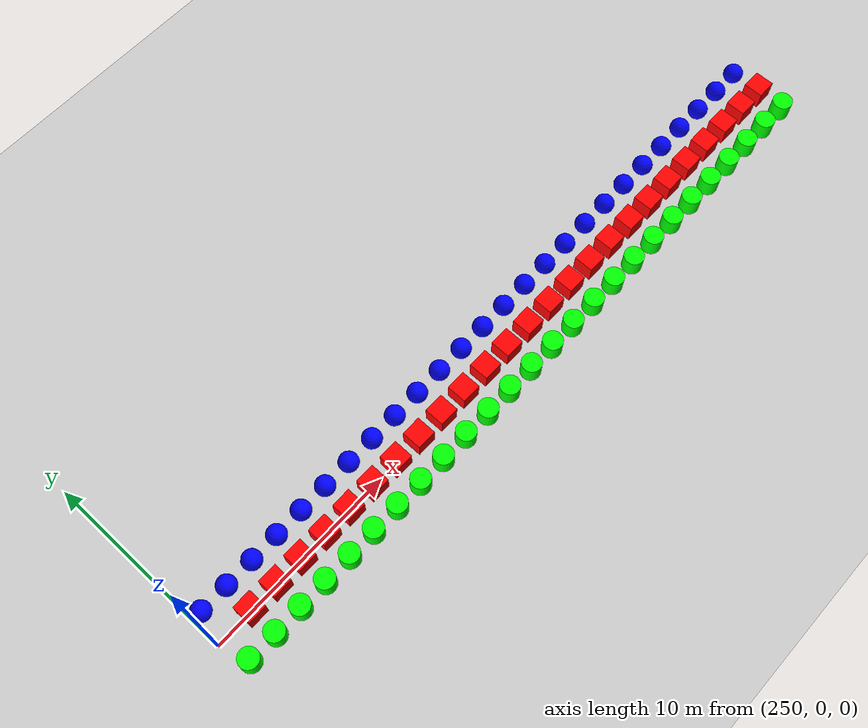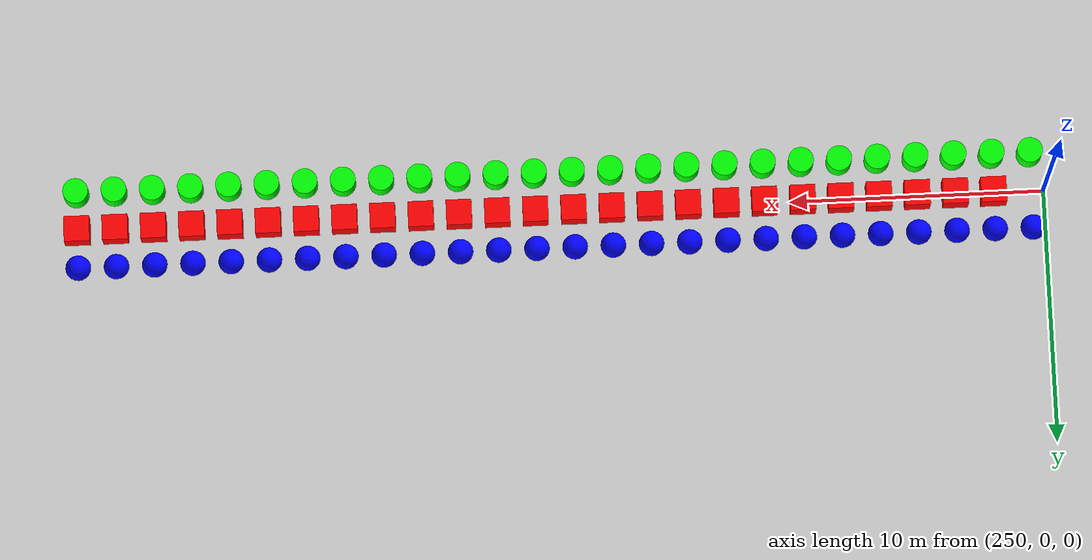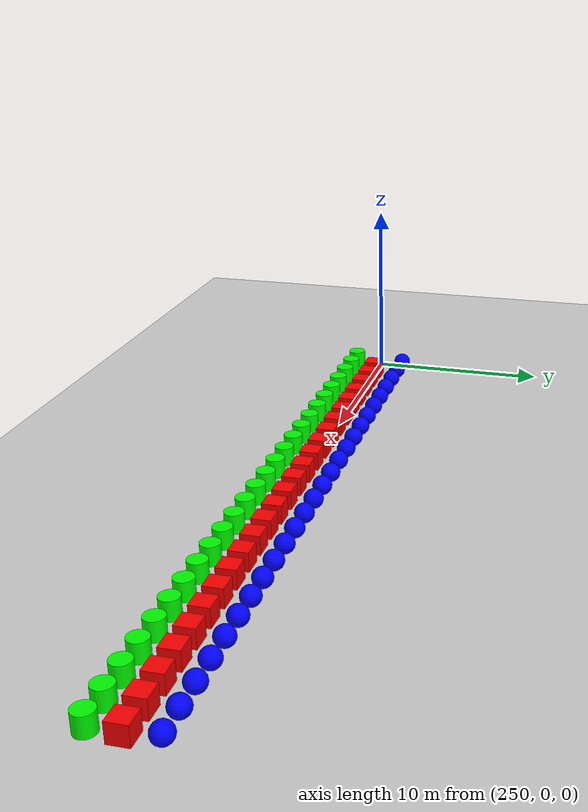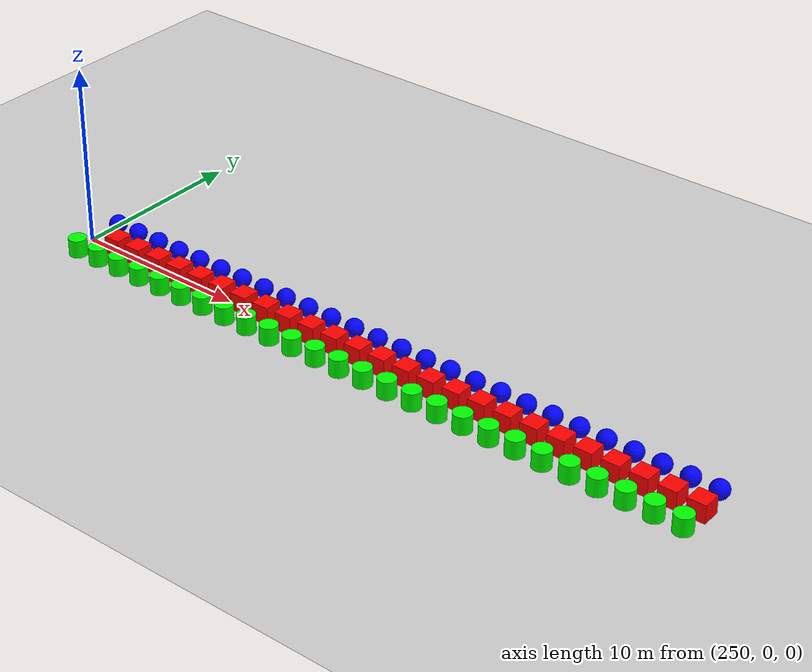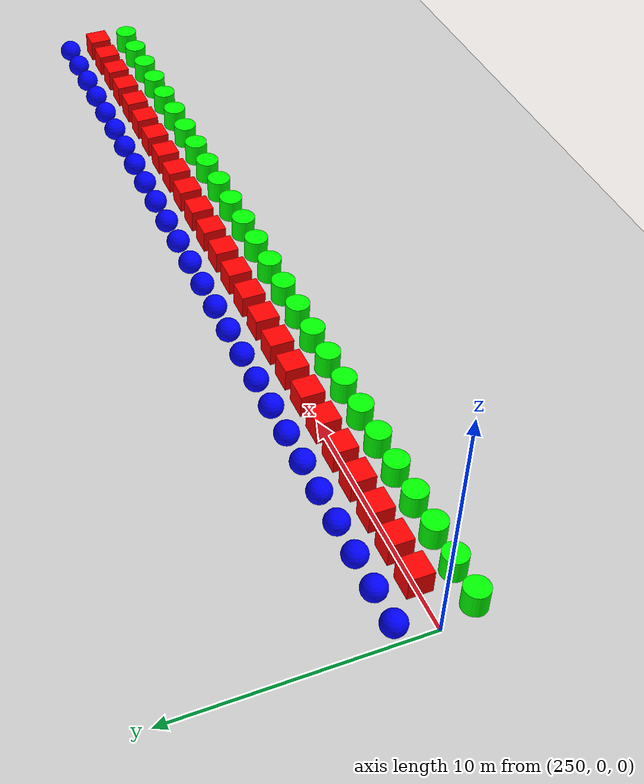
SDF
<sdf version="1.6">
 <world name="shapes">
  <model name="ground_plane">
   <static>true</static>
   <link name="link">
    <collision name="collision">
     <geometry><plane><normal>0 0 1</normal><size>100 100</size></plane></geometry>
    </collision>
    <visual name="visual">
     <geometry><plane><normal>0 0 1</normal><size>100 100</size></plane></geometry>
     <material>
      <ambient>0.8 0.8 0.8 1</ambient>
      <diffuse>0.8 0.8 0.8 1</diffuse>
      <specular>0.8 0.8 0.8 1</specular>
     </material>
    </visual>
   </link>
  </model>
  <model name="cylinder_667">
   <static>false</static>
   <pose>250.5 -1.5 0.5 0 0 0</pose>
   <link name="cylinder_link">
    <inertial>
     <inertia><ixx>2</ixx><ixy>0</ixy><ixz>0</ixz><iyy>2</iyy><iyz>0</iyz><izz>2</izz></inertia>
     <mass>2.0</mass>
    </inertial>
    <collision name="cylinder_collision">
     <geometry><cylinder><radius>0.5</radius><length>1.0</length></cylinder></geometry>
    </collision>
    <visual name="cylinder_visual">
     <geometry><cylinder><radius>0.5</radius><length>1.0</length></cylinder></geometry>
     <material><ambient>0 1 0 1</ambient><diffuse>0 1 0 1</diffuse><specular>0 1 0 1</specular></material>
    </visual>
   </link>
  </model>
  <model name="sphere_667">
   <static>false</static>
   <pose>250.5 1.5 0.5 0 0 0</pose>
   <link name="sphere_link">
    <inertial>
     <inertia><ixx>3</ixx><ixy>0</ixy><ixz>0</ixz><iyy>3</iyy><iyz>0</iyz><izz>3</izz></inertia>
     <mass>3.0</mass>
    </inertial>
    <collision name="sphere_collision"><geometry><sphere><radius>0.5</radius></sphere></geometry></collision>
    <visual name="sphere_visual">
     <geometry><sphere><radius>0.5</radius></sphere></geometry>
     <material><ambient>0 0 1 1</ambient><diffuse>0 0 1 1</diffuse><specular>0 0 1 1</specular></material>
    </visual>
   </link>
  </model>
  <model name="box_668">
   <static>false</static>
   <pose>252.0 0 0.5 0 0 0</pose>
   <link name="box_link">
    <inertial>
     <inertia><ixx>1</ixx><ixy>0</ixy><ixz>0</ixz><iyy>1</iyy><iyz>0</iyz><izz>1</izz></inertia>
     <mass>1.0</mass>
    </inertial>
    <collision name="box_collision"><geometry><box><size>1 1 1</size></box></geometry></collision>
    <visual name="box_visual">
     <geometry><box><size>1 1 1</size></box></geometry>
     <material><ambient>1 0 0 1</ambient><diffuse>1 0 0 1</diffuse><specular>1 0 0 1</specular></material>
    </visual>
   </link>
  </model>
  <model name="cylinder_668">
   <static>false</static>
   <pose>252.0 -1.5 0.5 0 0 0</pose>
   <link name="cylinder_link">
    <inertial>
     <inertia><ixx>2</ixx><ixy>0</ixy><ixz>0</ixz><iyy>2</iyy><iyz>0</iyz><izz>2</izz></inertia>
     <mass>2.0</mass>
    </inertial>
    <collision name="cylinder_collision">
     <geometry><cylinder><radius>0.5</radius><length>1.0</length></cylinder></geometry>
    </collision>
    <visual name="cylinder_visual">
     <geometry><cylinder><radius>0.5</radius><length>1.0</length></cylinder></geometry>
     <material><ambient>0 1 0 1</ambient><diffuse>0 1 0 1</diffuse><specular>0 1 0 1</specular></material>
    </visual>
   </link>
  </model>
  <model name="sphere_668">
   <static>false</static>
   <pose>252.0 1.5 0.5 0 0 0</pose>
   <link name="sphere_link">
    <inertial>
     <inertia><ixx>3</ixx><ixy>0</ixy><ixz>0</ixz><iyy>3</iyy><iyz>0</iyz><izz>3</izz></inertia>
     <mass>3.0</mass>
    </inertial>
    <collision name="sphere_collision"><geometry><sphere><radius>0.5</radius></sphere></geometry></collision>
    <visual name="sphere_visual">
     <geometry><sphere><radius>0.5</radius></sphere></geometry>
     <material><ambient>0 0 1 1</ambient><diffuse>0 0 1 1</diffuse><specular>0 0 1 1</specular></material>
    </visual>
   </link>
  </model>
  <model name="box_669">
   <static>false</static>
   <pose>253.5 0 0.5 0 0 0</pose>
   <link name="box_link">
    <inertial>
     <inertia><ixx>1</ixx><ixy>0</ixy><ixz>0</ixz><iyy>1</iyy><iyz>0</iyz><izz>1</izz></inertia>
     <mass>1.0</mass>
    </inertial>
    <collision name="box_collision"><geometry><box><size>1 1 1</size></box></geometry></collision>
    <visual name="box_visual">
     <geometry><box><size>1 1 1</size></box></geometry>
     <material><ambient>1 0 0 1</ambient><diffuse>1 0 0 1</diffuse><specular>1 0 0 1</specular></material>
    </visual>
   </link>
  </model>
  <model name="cylinder_669">
   <static>false</static>
   <pose>253.5 -1.5 0.5 0 0 0</pose>
   <link name="cylinder_link">
    <inertial>
     <inertia><ixx>2</ixx><ixy>0</ixy><ixz>0</ixz><iyy>2</iyy><iyz>0</iyz><izz>2</izz></inertia>
     <mass>2.0</mass>
    </inertial>
    <collision name="cylinder_collision">
     <geometry><cylinder><radius>0.5</radius><length>1.0</length></cylinder></geometry>
    </collision>
    <visual name="cylinder_visual">
     <geometry><cylinder><radius>0.5</radius><length>1.0</length></cylinder></geometry>
     <material><ambient>0 1 0 1</ambient><diffuse>0 1 0 1</diffuse><specular>0 1 0 1</specular></material>
    </visual>
   </link>
  </model>
  <model name="sphere_669">
   <static>false</static>
   <pose>253.5 1.5 0.5 0 0 0</pose>
   <link name="sphere_link">
    <inertial>
     <inertia><ixx>3</ixx><ixy>0</ixy><ixz>0</ixz><iyy>3</iyy><iyz>0</iyz><izz>3</izz></inertia>
     <mass>3.0</mass>
    </inertial>
    <collision name="sphere_collision"><geometry><sphere><radius>0.5</radius></sphere></geometry></collision>
    <visual name="sphere_visual">
     <geometry><sphere><radius>0.5</radius></sphere></geometry>
     <material><ambient>0 0 1 1</ambient><diffuse>0 0 1 1</diffuse><specular>0 0 1 1</specular></material>
    </visual>
   </link>
  </model>
  <model name="box_670">
   <static>false</static>
   <pose>255.0 0 0.5 0 0 0</pose>
   <link name="box_link">
    <inertial>
     <inertia><ixx>1</ixx><ixy>0</ixy><ixz>0</ixz><iyy>1</iyy><iyz>0</iyz><izz>1</izz></inertia>
     <mass>1.0</mass>
    </inertial>
    <collision name="box_collision"><geometry><box><size>1 1 1</size></box></geometry></collision>
    <visual name="box_visual">
     <geometry><box><size>1 1 1</size></box></geometry>
     <material><ambient>1 0 0 1</ambient><diffuse>1 0 0 1</diffuse><specular>1 0 0 1</specular></material>
    </visual>
   </link>
  </model>
  <model name="cylinder_670">
   <static>false</static>
   <pose>255.0 -1.5 0.5 0 0 0</pose>
   <link name="cylinder_link">
    <inertial>
     <inertia><ixx>2</ixx><ixy>0</ixy><ixz>0</ixz><iyy>2</iyy><iyz>0</iyz><izz>2</izz></inertia>
     <mass>2.0</mass>
    </inertial>
    <collision name="cylinder_collision">
     <geometry><cylinder><radius>0.5</radius><length>1.0</length></cylinder></geometry>
    </collision>
    <visual name="cylinder_visual">
     <geometry><cylinder><radius>0.5</radius><length>1.0</length></cylinder></geometry>
     <material><ambient>0 1 0 1</ambient><diffuse>0 1 0 1</diffuse><specular>0 1 0 1</specular></material>
    </visual>
   </link>
  </model>
  <model name="sphere_670">
   <static>false</static>
   <pose>255.0 1.5 0.5 0 0 0</pose>
   <link name="sphere_link">
    <inertial>
     <inertia><ixx>3</ixx><ixy>0</ixy><ixz>0</ixz><iyy>3</iyy><iyz>0</iyz><izz>3</izz></inertia>
     <mass>3.0</mass>
    </inertial>
    <collision name="sphere_collision"><geometry><sphere><radius>0.5</radius></sphere></geometry></collision>
    <visual name="sphere_visual">
     <geometry><sphere><radius>0.5</radius></sphere></geometry>
     <material><ambient>0 0 1 1</ambient><diffuse>0 0 1 1</diffuse><specular>0 0 1 1</specular></material>
    </visual>
   </link>
  </model>
  <model name="box_671">
   <static>false</static>
   <pose>256.5 0 0.5 0 0 0</pose>
   <link name="box_link">
    <inertial>
     <inertia><ixx>1</ixx><ixy>0</ixy><ixz>0</ixz><iyy>1</iyy><iyz>0</iyz><izz>1</izz></inertia>
     <mass>1.0</mass>
    </inertial>
    <collision name="box_collision"><geometry><box><size>1 1 1</size></box></geometry></collision>
    <visual name="box_visual">
     <geometry><box><size>1 1 1</size></box></geometry>
     <material><ambient>1 0 0 1</ambient><diffuse>1 0 0 1</diffuse><specular>1 0 0 1</specular></material>
    </visual>
   </link>
  </model>
  <model name="cylinder_671">
   <static>false</static>
   <pose>256.5 -1.5 0.5 0 0 0</pose>
   <link name="cylinder_link">
    <inertial>
     <inertia><ixx>2</ixx><ixy>0</ixy><ixz>0</ixz><iyy>2</iyy><iyz>0</iyz><izz>2</izz></inertia>
     <mass>2.0</mass>
    </inertial>
    <collision name="cylinder_collision">
     <geometry><cylinder><radius>0.5</radius><length>1.0</length></cylinder></geometry>
    </collision>
    <visual name="cylinder_visual">
     <geometry><cylinder><radius>0.5</radius><length>1.0</length></cylinder></geometry>
     <material><ambient>0 1 0 1</ambient><diffuse>0 1 0 1</diffuse><specular>0 1 0 1</specular></material>
    </visual>
   </link>
  </model>
  <model name="sphere_671">
   <static>false</static>
   <pose>256.5 1.5 0.5 0 0 0</pose>
   <link name="sphere_link">
    <inertial>
     <inertia><ixx>3</ixx><ixy>0</ixy><ixz>0</ixz><iyy>3</iyy><iyz>0</iyz><izz>3</izz></inertia>
     <mass>3.0</mass>
    </inertial>
    <collision name="sphere_collision"><geometry><sphere><radius>0.5</radius></sphere></geometry></collision>
    <visual name="sphere_visual">
     <geometry><sphere><radius>0.5</radius></sphere></geometry>
     <material><ambient>0 0 1 1</ambient><diffuse>0 0 1 1</diffuse><specular>0 0 1 1</specular></material>
    </visual>
   </link>
  </model>
  <model name="box_672">
   <static>false</static>
   <pose>258.0 0 0.5 0 0 0</pose>
   <link name="box_link">
    <inertial>
     <inertia><ixx>1</ixx><ixy>0</ixy><ixz>0</ixz><iyy>1</iyy><iyz>0</iyz><izz>1</izz></inertia>
     <mass>1.0</mass>
    </inertial>
    <collision name="box_collision"><geometry><box><size>1 1 1</size></box></geometry></collision>
    <visual name="box_visual">
     <geometry><box><size>1 1 1</size></box></geometry>
     <material><ambient>1 0 0 1</ambient><diffuse>1 0 0 1</diffuse><specular>1 0 0 1</specular></material>
    </visual>
   </link>
  </model>
  <model name="cylinder_672">
   <static>false</static>
   <pose>258.0 -1.5 0.5 0 0 0</pose>
   <link name="cylinder_link">
    <inertial>
     <inertia><ixx>2</ixx><ixy>0</ixy><ixz>0</ixz><iyy>2</iyy><iyz>0</iyz><izz>2</izz></inertia>
     <mass>2.0</mass>
    </inertial>
    <collision name="cylinder_collision">
     <geometry><cylinder><radius>0.5</radius><length>1.0</length></cylinder></geometry>
    </collision>
    <visual name="cylinder_visual">
     <geometry><cylinder><radius>0.5</radius><length>1.0</length></cylinder></geometry>
     <material><ambient>0 1 0 1</ambient><diffuse>0 1 0 1</diffuse><specular>0 1 0 1</specular></material>
    </visual>
   </link>
  </model>
  <model name="sphere_672">
   <static>false</static>
   <pose>258.0 1.5 0.5 0 0 0</pose>
   <link name="sphere_link">
    <inertial>
     <inertia><ixx>3</ixx><ixy>0</ixy><ixz>0</ixz><iyy>3</iyy><iyz>0</iyz><izz>3</izz></inertia>
     <mass>3.0</mass>
    </inertial>
    <collision name="sphere_collision"><geometry><sphere><radius>0.5</radius></sphere></geometry></collision>
    <visual name="sphere_visual">
     <geometry><sphere><radius>0.5</radius></sphere></geometry>
     <material><ambient>0 0 1 1</ambient><diffuse>0 0 1 1</diffuse><specular>0 0 1 1</specular></material>
    </visual>
   </link>
  </model>
  <model name="box_673">
   <static>false</static>
   <pose>259.5 0 0.5 0 0 0</pose>
   <link name="box_link">
    <inertial>
     <inertia><ixx>1</ixx><ixy>0</ixy><ixz>0</ixz><iyy>1</iyy><iyz>0</iyz><izz>1</izz></inertia>
     <mass>1.0</mass>
    </inertial>
    <collision name="box_collision"><geometry><box><size>1 1 1</size></box></geometry></collision>
    <visual name="box_visual">
     <geometry><box><size>1 1 1</size></box></geometry>
     <material><ambient>1 0 0 1</ambient><diffuse>1 0 0 1</diffuse><specular>1 0 0 1</specular></material>
    </visual>
   </link>
  </model>
  <model name="cylinder_673">
   <static>false</static>
   <pose>259.5 -1.5 0.5 0 0 0</pose>
   <link name="cylinder_link">
    <inertial>
     <inertia><ixx>2</ixx><ixy>0</ixy><ixz>0</ixz><iyy>2</iyy><iyz>0</iyz><izz>2</izz></inertia>
     <mass>2.0</mass>
    </inertial>
    <collision name="cylinder_collision">
     <geometry><cylinder><radius>0.5</radius><length>1.0</length></cylinder></geometry>
    </collision>
    <visual name="cylinder_visual">
     <geometry><cylinder><radius>0.5</radius><length>1.0</length></cylinder></geometry>
     <material><ambient>0 1 0 1</ambient><diffuse>0 1 0 1</diffuse><specular>0 1 0 1</specular></material>
    </visual>
   </link>
  </model>
  <model name="sphere_673">
   <static>false</static>
   <pose>259.5 1.5 0.5 0 0 0</pose>
   <link name="sphere_link">
    <inertial>
     <inertia><ixx>3</ixx><ixy>0</ixy><ixz>0</ixz><iyy>3</iyy><iyz>0</iyz><izz>3</izz></inertia>
     <mass>3.0</mass>
    </inertial>
    <collision name="sphere_collision"><geometry><sphere><radius>0.5</radius></sphere></geometry></collision>
    <visual name="sphere_visual">
     <geometry><sphere><radius>0.5</radius></sphere></geometry>
     <material><ambient>0 0 1 1</ambient><diffuse>0 0 1 1</diffuse><specular>0 0 1 1</specular></material>
    </visual>
   </link>
  </model>
  <model name="box_674">
   <static>false</static>
   <pose>261.0 0 0.5 0 0 0</pose>
   <link name="box_link">
    <inertial>
     <inertia><ixx>1</ixx><ixy>0</ixy><ixz>0</ixz><iyy>1</iyy><iyz>0</iyz><izz>1</izz></inertia>
     <mass>1.0</mass>
    </inertial>
    <collision name="box_collision"><geometry><box><size>1 1 1</size></box></geometry></collision>
    <visual name="box_visual">
     <geometry><box><size>1 1 1</size></box></geometry>
     <material><ambient>1 0 0 1</ambient><diffuse>1 0 0 1</diffuse><specular>1 0 0 1</specular></material>
    </visual>
   </link>
  </model>
  <model name="cylinder_674">
   <static>false</static>
   <pose>261.0 -1.5 0.5 0 0 0</pose>
   <link name="cylinder_link">
    <inertial>
     <inertia><ixx>2</ixx><ixy>0</ixy><ixz>0</ixz><iyy>2</iyy><iyz>0</iyz><izz>2</izz></inertia>
     <mass>2.0</mass>
    </inertial>
    <collision name="cylinder_collision">
     <geometry><cylinder><radius>0.5</radius><length>1.0</length></cylinder></geometry>
    </collision>
    <visual name="cylinder_visual">
     <geometry><cylinder><radius>0.5</radius><length>1.0</length></cylinder></geometry>
     <material><ambient>0 1 0 1</ambient><diffuse>0 1 0 1</diffuse><specular>0 1 0 1</specular></material>
    </visual>
   </link>
  </model>
  <model name="sphere_674">
   <static>false</static>
   <pose>261.0 1.5 0.5 0 0 0</pose>
   <link name="sphere_link">
    <inertial>
     <inertia><ixx>3</ixx><ixy>0</ixy><ixz>0</ixz><iyy>3</iyy><iyz>0</iyz><izz>3</izz></inertia>
     <mass>3.0</mass>
    </inertial>
    <collision name="sphere_collision"><geometry><sphere><radius>0.5</radius></sphere></geometry></collision>
    <visual name="sphere_visual">
     <geometry><sphere><radius>0.5</radius></sphere></geometry>
     <material><ambient>0 0 1 1</ambient><diffuse>0 0 1 1</diffuse><specular>0 0 1 1</specular></material>
    </visual>
   </link>
  </model>
  <model name="box_675">
   <static>false</static>
   <pose>262.5 0 0.5 0 0 0</pose>
   <link name="box_link">
    <inertial>
     <inertia><ixx>1</ixx><ixy>0</ixy><ixz>0</ixz><iyy>1</iyy><iyz>0</iyz><izz>1</izz></inertia>
     <mass>1.0</mass>
    </inertial>
    <collision name="box_collision"><geometry><box><size>1 1 1</size></box></geometry></collision>
    <visual name="box_visual">
     <geometry><box><size>1 1 1</size></box></geometry>
     <material><ambient>1 0 0 1</ambient><diffuse>1 0 0 1</diffuse><specular>1 0 0 1</specular></material>
    </visual>
   </link>
  </model>
  <model name="cylinder_675">
   <static>false</static>
   <pose>262.5 -1.5 0.5 0 0 0</pose>
   <link name="cylinder_link">
    <inertial>
     <inertia><ixx>2</ixx><ixy>0</ixy><ixz>0</ixz><iyy>2</iyy><iyz>0</iyz><izz>2</izz></inertia>
     <mass>2.0</mass>
    </inertial>
    <collision name="cylinder_collision">
     <geometry><cylinder><radius>0.5</radius><length>1.0</length></cylinder></geometry>
    </collision>
    <visual name="cylinder_visual">
     <geometry><cylinder><radius>0.5</radius><length>1.0</length></cylinder></geometry>
     <material><ambient>0 1 0 1</ambient><diffuse>0 1 0 1</diffuse><specular>0 1 0 1</specular></material>
    </visual>
   </link>
  </model>
  <model name="sphere_675">
   <static>false</static>
   <pose>262.5 1.5 0.5 0 0 0</pose>
   <link name="sphere_link">
    <inertial>
     <inertia><ixx>3</ixx><ixy>0</ixy><ixz>0</ixz><iyy>3</iyy><iyz>0</iyz><izz>3</izz></inertia>
     <mass>3.0</mass>
    </inertial>
    <collision name="sphere_collision"><geometry><sphere><radius>0.5</radius></sphere></geometry></collision>
    <visual name="sphere_visual">
     <geometry><sphere><radius>0.5</radius></sphere></geometry>
     <material><ambient>0 0 1 1</ambient><diffuse>0 0 1 1</diffuse><specular>0 0 1 1</specular></material>
    </visual>
   </link>
  </model>
  <model name="box_676">
   <static>false</static>
   <pose>264.0 0 0.5 0 0 0</pose>
   <link name="box_link">
    <inertial>
     <inertia><ixx>1</ixx><ixy>0</ixy><ixz>0</ixz><iyy>1</iyy><iyz>0</iyz><izz>1</izz></inertia>
     <mass>1.0</mass>
    </inertial>
    <collision name="box_collision"><geometry><box><size>1 1 1</size></box></geometry></collision>
    <visual name="box_visual">
     <geometry><box><size>1 1 1</size></box></geometry>
     <material><ambient>1 0 0 1</ambient><diffuse>1 0 0 1</diffuse><specular>1 0 0 1</specular></material>
    </visual>
   </link>
  </model>
  <model name="cylinder_676">
   <static>false</static>
   <pose>264.0 -1.5 0.5 0 0 0</pose>
   <link name="cylinder_link">
    <inertial>
     <inertia><ixx>2</ixx><ixy>0</ixy><ixz>0</ixz><iyy>2</iyy><iyz>0</iyz><izz>2</izz></inertia>
     <mass>2.0</mass>
    </inertial>
    <collision name="cylinder_collision">
     <geometry><cylinder><radius>0.5</radius><length>1.0</length></cylinder></geometry>
    </collision>
    <visual name="cylinder_visual">
     <geometry><cylinder><radius>0.5</radius><length>1.0</length></cylinder></geometry>
     <material><ambient>0 1 0 1</ambient><diffuse>0 1 0 1</diffuse><specular>0 1 0 1</specular></material>
    </visual>
   </link>
  </model>
  <model name="sphere_676">
   <static>false</static>
   <pose>264.0 1.5 0.5 0 0 0</pose>
   <link name="sphere_link">
    <inertial>
     <inertia><ixx>3</ixx><ixy>0</ixy><ixz>0</ixz><iyy>3</iyy><iyz>0</iyz><izz>3</izz></inertia>
     <mass>3.0</mass>
    </inertial>
    <collision name="sphere_collision"><geometry><sphere><radius>0.5</radius></sphere></geometry></collision>
    <visual name="sphere_visual">
     <geometry><sphere><radius>0.5</radius></sphere></geometry>
     <material><ambient>0 0 1 1</ambient><diffuse>0 0 1 1</diffuse><specular>0 0 1 1</specular></material>
    </visual>
   </link>
  </model>
  <model name="box_677">
   <static>false</static>
   <pose>265.5 0 0.5 0 0 0</pose>
   <link name="box_link">
    <inertial>
     <inertia><ixx>1</ixx><ixy>0</ixy><ixz>0</ixz><iyy>1</iyy><iyz>0</iyz><izz>1</izz></inertia>
     <mass>1.0</mass>
    </inertial>
    <collision name="box_collision"><geometry><box><size>1 1 1</size></box></geometry></collision>
    <visual name="box_visual">
     <geometry><box><size>1 1 1</size></box></geometry>
     <material><ambient>1 0 0 1</ambient><diffuse>1 0 0 1</diffuse><specular>1 0 0 1</specular></material>
    </visual>
   </link>
  </model>
  <model name="cylinder_677">
   <static>false</static>
   <pose>265.5 -1.5 0.5 0 0 0</pose>
   <link name="cylinder_link">
    <inertial>
     <inertia><ixx>2</ixx><ixy>0</ixy><ixz>0</ixz><iyy>2</iyy><iyz>0</iyz><izz>2</izz></inertia>
     <mass>2.0</mass>
    </inertial>
    <collision name="cylinder_collision">
     <geometry><cylinder><radius>0.5</radius><length>1.0</length></cylinder></geometry>
    </collision>
    <visual name="cylinder_visual">
     <geometry><cylinder><radius>0.5</radius><length>1.0</length></cylinder></geometry>
     <material><ambient>0 1 0 1</ambient><diffuse>0 1 0 1</diffuse><specular>0 1 0 1</specular></material>
    </visual>
   </link>
  </model>
  <model name="sphere_677">
   <static>false</static>
   <pose>265.5 1.5 0.5 0 0 0</pose>
   <link name="sphere_link">
    <inertial>
     <inertia><ixx>3</ixx><ixy>0</ixy><ixz>0</ixz><iyy>3</iyy><iyz>0</iyz><izz>3</izz></inertia>
     <mass>3.0</mass>
    </inertial>
    <collision name="sphere_collision"><geometry><sphere><radius>0.5</radius></sphere></geometry></collision>
    <visual name="sphere_visual">
     <geometry><sphere><radius>0.5</radius></sphere></geometry>
     <material><ambient>0 0 1 1</ambient><diffuse>0 0 1 1</diffuse><specular>0 0 1 1</specular></material>
    </visual>
   </link>
  </model>
  <model name="box_678">
   <static>false</static>
   <pose>267.0 0 0.5 0 0 0</pose>
   <link name="box_link">
    <inertial>
     <inertia><ixx>1</ixx><ixy>0</ixy><ixz>0</ixz><iyy>1</iyy><iyz>0</iyz><izz>1</izz></inertia>
     <mass>1.0</mass>
    </inertial>
    <collision name="box_collision"><geometry><box><size>1 1 1</size></box></geometry></collision>
    <visual name="box_visual">
     <geometry><box><size>1 1 1</size></box></geometry>
     <material><ambient>1 0 0 1</ambient><diffuse>1 0 0 1</diffuse><specular>1 0 0 1</specular></material>
    </visual>
   </link>
  </model>
  <model name="cylinder_678">
   <static>false</static>
   <pose>267.0 -1.5 0.5 0 0 0</pose>
   <link name="cylinder_link">
    <inertial>
     <inertia><ixx>2</ixx><ixy>0</ixy><ixz>0</ixz><iyy>2</iyy><iyz>0</iyz><izz>2</izz></inertia>
     <mass>2.0</mass>
    </inertial>
    <collision name="cylinder_collision">
     <geometry><cylinder><radius>0.5</radius><length>1.0</length></cylinder></geometry>
    </collision>
    <visual name="cylinder_visual">
     <geometry><cylinder><radius>0.5</radius><length>1.0</length></cylinder></geometry>
     <material><ambient>0 1 0 1</ambient><diffuse>0 1 0 1</diffuse><specular>0 1 0 1</specular></material>
    </visual>
   </link>
  </model>
  <model name="sphere_678">
   <static>false</static>
   <pose>267.0 1.5 0.5 0 0 0</pose>
   <link name="sphere_link">
    <inertial>
     <inertia><ixx>3</ixx><ixy>0</ixy><ixz>0</ixz><iyy>3</iyy><iyz>0</iyz><izz>3</izz></inertia>
     <mass>3.0</mass>
    </inertial>
    <collision name="sphere_collision"><geometry><sphere><radius>0.5</radius></sphere></geometry></collision>
    <visual name="sphere_visual">
     <geometry><sphere><radius>0.5</radius></sphere></geometry>
     <material><ambient>0 0 1 1</ambient><diffuse>0 0 1 1</diffuse><specular>0 0 1 1</specular></material>
    </visual>
   </link>
  </model>
  <model name="box_679">
   <static>false</static>
   <pose>268.5 0 0.5 0 0 0</pose>
   <link name="box_link">
    <inertial>
     <inertia><ixx>1</ixx><ixy>0</ixy><ixz>0</ixz><iyy>1</iyy><iyz>0</iyz><izz>1</izz></inertia>
     <mass>1.0</mass>
    </inertial>
    <collision name="box_collision"><geometry><box><size>1 1 1</size></box></geometry></collision>
    <visual name="box_visual">
     <geometry><box><size>1 1 1</size></box></geometry>
     <material><ambient>1 0 0 1</ambient><diffuse>1 0 0 1</diffuse><specular>1 0 0 1</specular></material>
    </visual>
   </link>
  </model>
  <model name="cylinder_679">
   <static>false</static>
   <pose>268.5 -1.5 0.5 0 0 0</pose>
   <link name="cylinder_link">
    <inertial>
     <inertia><ixx>2</ixx><ixy>0</ixy><ixz>0</ixz><iyy>2</iyy><iyz>0</iyz><izz>2</izz></inertia>
     <mass>2.0</mass>
    </inertial>
    <collision name="cylinder_collision">
     <geometry><cylinder><radius>0.5</radius><length>1.0</length></cylinder></geometry>
    </collision>
    <visual name="cylinder_visual">
     <geometry><cylinder><radius>0.5</radius><length>1.0</length></cylinder></geometry>
     <material><ambient>0 1 0 1</ambient><diffuse>0 1 0 1</diffuse><specular>0 1 0 1</specular></material>
    </visual>
   </link>
  </model>
  <model name="sphere_679">
   <static>false</static>
   <pose>268.5 1.5 0.5 0 0 0</pose>
   <link name="sphere_link">
    <inertial>
     <inertia><ixx>3</ixx><ixy>0</ixy><ixz>0</ixz><iyy>3</iyy><iyz>0</iyz><izz>3</izz></inertia>
     <mass>3.0</mass>
    </inertial>
    <collision name="sphere_collision"><geometry><sphere><radius>0.5</radius></sphere></geometry></collision>
    <visual name="sphere_visual">
     <geometry><sphere><radius>0.5</radius></sphere></geometry>
     <material><ambient>0 0 1 1</ambient><diffuse>0 0 1 1</diffuse><specular>0 0 1 1</specular></material>
    </visual>
   </link>
  </model>
  <model name="box_680">
   <static>false</static>
   <pose>270.0 0 0.5 0 0 0</pose>
   <link name="box_link">
    <inertial>
     <inertia><ixx>1</ixx><ixy>0</ixy><ixz>0</ixz><iyy>1</iyy><iyz>0</iyz><izz>1</izz></inertia>
     <mass>1.0</mass>
    </inertial>
    <collision name="box_collision"><geometry><box><size>1 1 1</size></box></geometry></collision>
    <visual name="box_visual">
     <geometry><box><size>1 1 1</size></box></geometry>
     <material><ambient>1 0 0 1</ambient><diffuse>1 0 0 1</diffuse><specular>1 0 0 1</specular></material>
    </visual>
   </link>
  </model>
  <model name="cylinder_680">
   <static>false</static>
   <pose>270.0 -1.5 0.5 0 0 0</pose>
   <link name="cylinder_link">
    <inertial>
     <inertia><ixx>2</ixx><ixy>0</ixy><ixz>0</ixz><iyy>2</iyy><iyz>0</iyz><izz>2</izz></inertia>
     <mass>2.0</mass>
    </inertial>
    <collision name="cylinder_collision">
     <geometry><cylinder><radius>0.5</radius><length>1.0</length></cylinder></geometry>
    </collision>
    <visual name="cylinder_visual">
     <geometry><cylinder><radius>0.5</radius><length>1.0</length></cylinder></geometry>
     <material><ambient>0 1 0 1</ambient><diffuse>0 1 0 1</diffuse><specular>0 1 0 1</specular></material>
    </visual>
   </link>
  </model>
  <model name="sphere_680">
   <static>false</static>
   <pose>270.0 1.5 0.5 0 0 0</pose>
   <link name="sphere_link">
    <inertial>
     <inertia><ixx>3</ixx><ixy>0</ixy><ixz>0</ixz><iyy>3</iyy><iyz>0</iyz><izz>3</izz></inertia>
     <mass>3.0</mass>
    </inertial>
    <collision name="sphere_collision"><geometry><sphere><radius>0.5</radius></sphere></geometry></collision>
    <visual name="sphere_visual">
     <geometry><sphere><radius>0.5</radius></sphere></geometry>
     <material><ambient>0 0 1 1</ambient><diffuse>0 0 1 1</diffuse><specular>0 0 1 1</specular></material>
    </visual>
   </link>
  </model>
  <model name="box_681">
   <static>false</static>
   <pose>271.5 0 0.5 0 0 0</pose>
   <link name="box_link">
    <inertial>
     <inertia><ixx>1</ixx><ixy>0</ixy><ixz>0</ixz><iyy>1</iyy><iyz>0</iyz><izz>1</izz></inertia>
     <mass>1.0</mass>
    </inertial>
    <collision name="box_collision"><geometry><box><size>1 1 1</size></box></geometry></collision>
    <visual name="box_visual">
     <geometry><box><size>1 1 1</size></box></geometry>
     <material><ambient>1 0 0 1</ambient><diffuse>1 0 0 1</diffuse><specular>1 0 0 1</specular></material>
    </visual>
   </link>
  </model>
  <model name="cylinder_681">
   <static>false</static>
   <pose>271.5 -1.5 0.5 0 0 0</pose>
   <link name="cylinder_link">
    <inertial>
     <inertia><ixx>2</ixx><ixy>0</ixy><ixz>0</ixz><iyy>2</iyy><iyz>0</iyz><izz>2</izz></inertia>
     <mass>2.0</mass>
    </inertial>
    <collision name="cylinder_collision">
     <geometry><cylinder><radius>0.5</radius><length>1.0</length></cylinder></geometry>
    </collision>
    <visual name="cylinder_visual">
     <geometry><cylinder><radius>0.5</radius><length>1.0</length></cylinder></geometry>
     <material><ambient>0 1 0 1</ambient><diffuse>0 1 0 1</diffuse><specular>0 1 0 1</specular></material>
    </visual>
   </link>
  </model>
  <model name="sphere_681">
   <static>false</static>
   <pose>271.5 1.5 0.5 0 0 0</pose>
   <link name="sphere_link">
    <inertial>
     <inertia><ixx>3</ixx><ixy>0</ixy><ixz>0</ixz><iyy>3</iyy><iyz>0</iyz><izz>3</izz></inertia>
     <mass>3.0</mass>
    </inertial>
    <collision name="sphere_collision"><geometry><sphere><radius>0.5</radius></sphere></geometry></collision>
    <visual name="sphere_visual">
     <geometry><sphere><radius>0.5</radius></sphere></geometry>
     <material><ambient>0 0 1 1</ambient><diffuse>0 0 1 1</diffuse><specular>0 0 1 1</specular></material>
    </visual>
   </link>
  </model>
  <model name="box_682">
   <static>false</static>
   <pose>273.0 0 0.5 0 0 0</pose>
   <link name="box_link">
    <inertial>
     <inertia><ixx>1</ixx><ixy>0</ixy><ixz>0</ixz><iyy>1</iyy><iyz>0</iyz><izz>1</izz></inertia>
     <mass>1.0</mass>
    </inertial>
    <collision name="box_collision"><geometry><box><size>1 1 1</size></box></geometry></collision>
    <visual name="box_visual">
     <geometry><box><size>1 1 1</size></box></geometry>
     <material><ambient>1 0 0 1</ambient><diffuse>1 0 0 1</diffuse><specular>1 0 0 1</specular></material>
    </visual>
   </link>
  </model>
  <model name="cylinder_682">
   <static>false</static>
   <pose>273.0 -1.5 0.5 0 0 0</pose>
   <link name="cylinder_link">
    <inertial>
     <inertia><ixx>2</ixx><ixy>0</ixy><ixz>0</ixz><iyy>2</iyy><iyz>0</iyz><izz>2</izz></inertia>
     <mass>2.0</mass>
    </inertial>
    <collision name="cylinder_collision">
     <geometry><cylinder><radius>0.5</radius><length>1.0</length></cylinder></geometry>
    </collision>
    <visual name="cylinder_visual">
     <geometry><cylinder><radius>0.5</radius><length>1.0</length></cylinder></geometry>
     <material><ambient>0 1 0 1</ambient><diffuse>0 1 0 1</diffuse><specular>0 1 0 1</specular></material>
    </visual>
   </link>
  </model>
  <model name="sphere_682">
   <static>false</static>
   <pose>273.0 1.5 0.5 0 0 0</pose>
   <link name="sphere_link">
    <inertial>
     <inertia><ixx>3</ixx><ixy>0</ixy><ixz>0</ixz><iyy>3</iyy><iyz>0</iyz><izz>3</izz></inertia>
     <mass>3.0</mass>
    </inertial>
    <collision name="sphere_collision"><geometry><sphere><radius>0.5</radius></sphere></geometry></collision>
    <visual name="sphere_visual">
     <geometry><sphere><radius>0.5</radius></sphere></geometry>
     <material><ambient>0 0 1 1</ambient><diffuse>0 0 1 1</diffuse><specular>0 0 1 1</specular></material>
    </visual>
   </link>
  </model>
  <model name="box_683">
   <static>false</static>
   <pose>274.5 0 0.5 0 0 0</pose>
   <link name="box_link">
    <inertial>
     <inertia><ixx>1</ixx><ixy>0</ixy><ixz>0</ixz><iyy>1</iyy><iyz>0</iyz><izz>1</izz></inertia>
     <mass>1.0</mass>
    </inertial>
    <collision name="box_collision"><geometry><box><size>1 1 1</size></box></geometry></collision>
    <visual name="box_visual">
     <geometry><box><size>1 1 1</size></box></geometry>
     <material><ambient>1 0 0 1</ambient><diffuse>1 0 0 1</diffuse><specular>1 0 0 1</specular></material>
    </visual>
   </link>
  </model>
  <model name="cylinder_683">
   <static>false</static>
   <pose>274.5 -1.5 0.5 0 0 0</pose>
   <link name="cylinder_link">
    <inertial>
     <inertia><ixx>2</ixx><ixy>0</ixy><ixz>0</ixz><iyy>2</iyy><iyz>0</iyz><izz>2</izz></inertia>
     <mass>2.0</mass>
    </inertial>
    <collision name="cylinder_collision">
     <geometry><cylinder><radius>0.5</radius><length>1.0</length></cylinder></geometry>
    </collision>
    <visual name="cylinder_visual">
     <geometry><cylinder><radius>0.5</radius><length>1.0</length></cylinder></geometry>
     <material><ambient>0 1 0 1</ambient><diffuse>0 1 0 1</diffuse><specular>0 1 0 1</specular></material>
    </visual>
   </link>
  </model>
  <model name="sphere_683">
   <static>false</static>
   <pose>274.5 1.5 0.5 0 0 0</pose>
   <link name="sphere_link">
    <inertial>
     <inertia><ixx>3</ixx><ixy>0</ixy><ixz>0</ixz><iyy>3</iyy><iyz>0</iyz><izz>3</izz></inertia>
     <mass>3.0</mass>
    </inertial>
    <collision name="sphere_collision"><geometry><sphere><radius>0.5</radius></sphere></geometry></collision>
    <visual name="sphere_visual">
     <geometry><sphere><radius>0.5</radius></sphere></geometry>
     <material><ambient>0 0 1 1</ambient><diffuse>0 0 1 1</diffuse><specular>0 0 1 1</specular></material>
    </visual>
   </link>
  </model>
  <model name="box_684">
   <static>false</static>
   <pose>276.0 0 0.5 0 0 0</pose>
   <link name="box_link">
    <inertial>
     <inertia><ixx>1</ixx><ixy>0</ixy><ixz>0</ixz><iyy>1</iyy><iyz>0</iyz><izz>1</izz></inertia>
     <mass>1.0</mass>
    </inertial>
    <collision name="box_collision"><geometry><box><size>1 1 1</size></box></geometry></collision>
    <visual name="box_visual">
     <geometry><box><size>1 1 1</size></box></geometry>
     <material><ambient>1 0 0 1</ambient><diffuse>1 0 0 1</diffuse><specular>1 0 0 1</specular></material>
    </visual>
   </link>
  </model>
  <model name="cylinder_684">
   <static>false</static>
   <pose>276.0 -1.5 0.5 0 0 0</pose>
   <link name="cylinder_link">
    <inertial>
     <inertia><ixx>2</ixx><ixy>0</ixy><ixz>0</ixz><iyy>2</iyy><iyz>0</iyz><izz>2</izz></inertia>
     <mass>2.0</mass>
    </inertial>
    <collision name="cylinder_collision">
     <geometry><cylinder><radius>0.5</radius><length>1.0</length></cylinder></geometry>
    </collision>
    <visual name="cylinder_visual">
     <geometry><cylinder><radius>0.5</radius><length>1.0</length></cylinder></geometry>
     <material><ambient>0 1 0 1</ambient><diffuse>0 1 0 1</diffuse><specular>0 1 0 1</specular></material>
    </visual>
   </link>
  </model>
  <model name="sphere_684">
   <static>false</static>
   <pose>276.0 1.5 0.5 0 0 0</pose>
   <link name="sphere_link">
    <inertial>
     <inertia><ixx>3</ixx><ixy>0</ixy><ixz>0</ixz><iyy>3</iyy><iyz>0</iyz><izz>3</izz></inertia>
     <mass>3.0</mass>
    </inertial>
    <collision name="sphere_collision"><geometry><sphere><radius>0.5</radius></sphere></geometry></collision>
    <visual name="sphere_visual">
     <geometry><sphere><radius>0.5</radius></sphere></geometry>
     <material><ambient>0 0 1 1</ambient><diffuse>0 0 1 1</diffuse><specular>0 0 1 1</specular></material>
    </visual>
   </link>
  </model>
  <model name="box_685">
   <static>false</static>
   <pose>277.5 0 0.5 0 0 0</pose>
   <link name="box_link">
    <inertial>
     <inertia><ixx>1</ixx><ixy>0</ixy><ixz>0</ixz><iyy>1</iyy><iyz>0</iyz><izz>1</izz></inertia>
     <mass>1.0</mass>
    </inertial>
    <collision name="box_collision"><geometry><box><size>1 1 1</size></box></geometry></collision>
    <visual name="box_visual">
     <geometry><box><size>1 1 1</size></box></geometry>
     <material><ambient>1 0 0 1</ambient><diffuse>1 0 0 1</diffuse><specular>1 0 0 1</specular></material>
    </visual>
   </link>
  </model>
  <model name="cylinder_685">
   <static>false</static>
   <pose>277.5 -1.5 0.5 0 0 0</pose>
   <link name="cylinder_link">
    <inertial>
     <inertia><ixx>2</ixx><ixy>0</ixy><ixz>0</ixz><iyy>2</iyy><iyz>0</iyz><izz>2</izz></inertia>
     <mass>2.0</mass>
    </inertial>
    <collision name="cylinder_collision">
     <geometry><cylinder><radius>0.5</radius><length>1.0</length></cylinder></geometry>
    </collision>
    <visual name="cylinder_visual">
     <geometry><cylinder><radius>0.5</radius><length>1.0</length></cylinder></geometry>
     <material><ambient>0 1 0 1</ambient><diffuse>0 1 0 1</diffuse><specular>0 1 0 1</specular></material>
    </visual>
   </link>
  </model>
  <model name="sphere_685">
   <static>false</static>
   <pose>277.5 1.5 0.5 0 0 0</pose>
   <link name="sphere_link">
    <inertial>
     <inertia><ixx>3</ixx><ixy>0</ixy><ixz>0</ixz><iyy>3</iyy><iyz>0</iyz><izz>3</izz></inertia>
     <mass>3.0</mass>
    </inertial>
    <collision name="sphere_collision"><geometry><sphere><radius>0.5</radius></sphere></geometry></collision>
    <visual name="sphere_visual">
     <geometry><sphere><radius>0.5</radius></sphere></geometry>
     <material><ambient>0 0 1 1</ambient><diffuse>0 0 1 1</diffuse><specular>0 0 1 1</specular></material>
    </visual>
   </link>
  </model>
  <model name="box_686">
   <static>false</static>
   <pose>279.0 0 0.5 0 0 0</pose>
   <link name="box_link">
    <inertial>
     <inertia><ixx>1</ixx><ixy>0</ixy><ixz>0</ixz><iyy>1</iyy><iyz>0</iyz><izz>1</izz></inertia>
     <mass>1.0</mass>
    </inertial>
    <collision name="box_collision"><geometry><box><size>1 1 1</size></box></geometry></collision>
    <visual name="box_visual">
     <geometry><box><size>1 1 1</size></box></geometry>
     <material><ambient>1 0 0 1</ambient><diffuse>1 0 0 1</diffuse><specular>1 0 0 1</specular></material>
    </visual>
   </link>
  </model>
  <model name="cylinder_686">
   <static>false</static>
   <pose>279.0 -1.5 0.5 0 0 0</pose>
   <link name="cylinder_link">
    <inertial>
     <inertia><ixx>2</ixx><ixy>0</ixy><ixz>0</ixz><iyy>2</iyy><iyz>0</iyz><izz>2</izz></inertia>
     <mass>2.0</mass>
    </inertial>
    <collision name="cylinder_collision">
     <geometry><cylinder><radius>0.5</radius><length>1.0</length></cylinder></geometry>
    </collision>
    <visual name="cylinder_visual">
     <geometry><cylinder><radius>0.5</radius><length>1.0</length></cylinder></geometry>
     <material><ambient>0 1 0 1</ambient><diffuse>0 1 0 1</diffuse><specular>0 1 0 1</specular></material>
    </visual>
   </link>
  </model>
  <model name="sphere_686">
   <static>false</static>
   <pose>279.0 1.5 0.5 0 0 0</pose>
   <link name="sphere_link">
    <inertial>
     <inertia><ixx>3</ixx><ixy>0</ixy><ixz>0</ixz><iyy>3</iyy><iyz>0</iyz><izz>3</izz></inertia>
     <mass>3.0</mass>
    </inertial>
    <collision name="sphere_collision"><geometry><sphere><radius>0.5</radius></sphere></geometry></collision>
    <visual name="sphere_visual">
     <geometry><sphere><radius>0.5</radius></sphere></geometry>
     <material><ambient>0 0 1 1</ambient><diffuse>0 0 1 1</diffuse><specular>0 0 1 1</specular></material>
    </visual>
   </link>
  </model>
  <model name="box_687">
   <static>false</static>
   <pose>280.5 0 0.5 0 0 0</pose>
   <link name="box_link">
    <inertial>
     <inertia><ixx>1</ixx><ixy>0</ixy><ixz>0</ixz><iyy>1</iyy><iyz>0</iyz><izz>1</izz></inertia>
     <mass>1.0</mass>
    </inertial>
    <collision name="box_collision"><geometry><box><size>1 1 1</size></box></geometry></collision>
    <visual name="box_visual">
     <geometry><box><size>1 1 1</size></box></geometry>
     <material><ambient>1 0 0 1</ambient><diffuse>1 0 0 1</diffuse><specular>1 0 0 1</specular></material>
    </visual>
   </link>
  </model>
  <model name="cylinder_687">
   <static>false</static>
   <pose>280.5 -1.5 0.5 0 0 0</pose>
   <link name="cylinder_link">
    <inertial>
     <inertia><ixx>2</ixx><ixy>0</ixy><ixz>0</ixz><iyy>2</iyy><iyz>0</iyz><izz>2</izz></inertia>
     <mass>2.0</mass>
    </inertial>
    <collision name="cylinder_collision">
     <geometry><cylinder><radius>0.5</radius><length>1.0</length></cylinder></geometry>
    </collision>
    <visual name="cylinder_visual">
     <geometry><cylinder><radius>0.5</radius><length>1.0</length></cylinder></geometry>
     <material><ambient>0 1 0 1</ambient><diffuse>0 1 0 1</diffuse><specular>0 1 0 1</specular></material>
    </visual>
   </link>
  </model>
  <model name="sphere_687">
   <static>false</static>
   <pose>280.5 1.5 0.5 0 0 0</pose>
   <link name="sphere_link">
    <inertial>
     <inertia><ixx>3</ixx><ixy>0</ixy><ixz>0</ixz><iyy>3</iyy><iyz>0</iyz><izz>3</izz></inertia>
     <mass>3.0</mass>
    </inertial>
    <collision name="sphere_collision"><geometry><sphere><radius>0.5</radius></sphere></geometry></collision>
    <visual name="sphere_visual">
     <geometry><sphere><radius>0.5</radius></sphere></geometry>
     <material><ambient>0 0 1 1</ambient><diffuse>0 0 1 1</diffuse><specular>0 0 1 1</specular></material>
    </visual>
   </link>
  </model>
  <model name="box_688">
   <static>false</static>
   <pose>282.0 0 0.5 0 0 0</pose>
   <link name="box_link">
    <inertial>
     <inertia><ixx>1</ixx><ixy>0</ixy><ixz>0</ixz><iyy>1</iyy><iyz>0</iyz><izz>1</izz></inertia>
     <mass>1.0</mass>
    </inertial>
    <collision name="box_collision"><geometry><box><size>1 1 1</size></box></geometry></collision>
    <visual name="box_visual">
     <geometry><box><size>1 1 1</size></box></geometry>
     <material><ambient>1 0 0 1</ambient><diffuse>1 0 0 1</diffuse><specular>1 0 0 1</specular></material>
    </visual>
   </link>
  </model>
  <model name="cylinder_688">
   <static>false</static>
   <pose>282.0 -1.5 0.5 0 0 0</pose>
   <link name="cylinder_link">
    <inertial>
     <inertia><ixx>2</ixx><ixy>0</ixy><ixz>0</ixz><iyy>2</iyy><iyz>0</iyz><izz>2</izz></inertia>
     <mass>2.0</mass>
    </inertial>
    <collision name="cylinder_collision">
     <geometry><cylinder><radius>0.5</radius><length>1.0</length></cylinder></geometry>
    </collision>
    <visual name="cylinder_visual">
     <geometry><cylinder><radius>0.5</radius><length>1.0</length></cylinder></geometry>
     <material><ambient>0 1 0 1</ambient><diffuse>0 1 0 1</diffuse><specular>0 1 0 1</specular></material>
    </visual>
   </link>
  </model>
  <model name="sphere_688">
   <static>false</static>
   <pose>282.0 1.5 0.5 0 0 0</pose>
   <link name="sphere_link">
    <inertial>
     <inertia><ixx>3</ixx><ixy>0</ixy><ixz>0</ixz><iyy>3</iyy><iyz>0</iyz><izz>3</izz></inertia>
     <mass>3.0</mass>
    </inertial>
    <collision name="sphere_collision"><geometry><sphere><radius>0.5</radius></sphere></geometry></collision>
    <visual name="sphere_visual">
     <geometry><sphere><radius>0.5</radius></sphere></geometry>
     <material><ambient>0 0 1 1</ambient><diffuse>0 0 1 1</diffuse><specular>0 0 1 1</specular></material>
    </visual>
   </link>
  </model>
  <model name="box_689">
   <static>false</static>
   <pose>283.5 0 0.5 0 0 0</pose>
   <link name="box_link">
    <inertial>
     <inertia><ixx>1</ixx><ixy>0</ixy><ixz>0</ixz><iyy>1</iyy><iyz>0</iyz><izz>1</izz></inertia>
     <mass>1.0</mass>
    </inertial>
    <collision name="box_collision"><geometry><box><size>1 1 1</size></box></geometry></collision>
    <visual name="box_visual">
     <geometry><box><size>1 1 1</size></box></geometry>
     <material><ambient>1 0 0 1</ambient><diffuse>1 0 0 1</diffuse><specular>1 0 0 1</specular></material>
    </visual>
   </link>
  </model>
  <model name="cylinder_689">
   <static>false</static>
   <pose>283.5 -1.5 0.5 0 0 0</pose>
   <link name="cylinder_link">
    <inertial>
     <inertia><ixx>2</ixx><ixy>0</ixy><ixz>0</ixz><iyy>2</iyy><iyz>0</iyz><izz>2</izz></inertia>
     <mass>2.0</mass>
    </inertial>
    <collision name="cylinder_collision">
     <geometry><cylinder><radius>0.5</radius><length>1.0</length></cylinder></geometry>
    </collision>
    <visual name="cylinder_visual">
     <geometry><cylinder><radius>0.5</radius><length>1.0</length></cylinder></geometry>
     <material><ambient>0 1 0 1</ambient><diffuse>0 1 0 1</diffuse><specular>0 1 0 1</specular></material>
    </visual>
   </link>
  </model>
  <model name="sphere_689">
   <static>false</static>
   <pose>283.5 1.5 0.5 0 0 0</pose>
   <link name="sphere_link">
    <inertial>
     <inertia><ixx>3</ixx><ixy>0</ixy><ixz>0</ixz><iyy>3</iyy><iyz>0</iyz><izz>3</izz></inertia>
     <mass>3.0</mass>
    </inertial>
    <collision name="sphere_collision"><geometry><sphere><radius>0.5</radius></sphere></geometry></collision>
    <visual name="sphere_visual">
     <geometry><sphere><radius>0.5</radius></sphere></geometry>
     <material><ambient>0 0 1 1</ambient><diffuse>0 0 1 1</diffuse><specular>0 0 1 1</specular></material>
    </visual>
   </link>
  </model>
  <model name="box_690">
   <static>false</static>
   <pose>285.0 0 0.5 0 0 0</pose>
   <link name="box_link">
    <inertial>
     <inertia><ixx>1</ixx><ixy>0</ixy><ixz>0</ixz><iyy>1</iyy><iyz>0</iyz><izz>1</izz></inertia>
     <mass>1.0</mass>
    </inertial>
    <collision name="box_collision"><geometry><box><size>1 1 1</size></box></geometry></collision>
    <visual name="box_visual">
     <geometry><box><size>1 1 1</size></box></geometry>
     <material><ambient>1 0 0 1</ambient><diffuse>1 0 0 1</diffuse><specular>1 0 0 1</specular></material>
    </visual>
   </link>
  </model>
  <model name="cylinder_690">
   <static>false</static>
   <pose>285.0 -1.5 0.5 0 0 0</pose>
   <link name="cylinder_link">
    <inertial>
     <inertia><ixx>2</ixx><ixy>0</ixy><ixz>0</ixz><iyy>2</iyy><iyz>0</iyz><izz>2</izz></inertia>
     <mass>2.0</mass>
    </inertial>
    <collision name="cylinder_collision">
     <geometry><cylinder><radius>0.5</radius><length>1.0</length></cylinder></geometry>
    </collision>
    <visual name="cylinder_visual">
     <geometry><cylinder><radius>0.5</radius><length>1.0</length></cylinder></geometry>
     <material><ambient>0 1 0 1</ambient><diffuse>0 1 0 1</diffuse><specular>0 1 0 1</specular></material>
    </visual>
   </link>
  </model>
  <model name="sphere_690">
   <static>false</static>
   <pose>285.0 1.5 0.5 0 0 0</pose>
   <link name="sphere_link">
    <inertial>
     <inertia><ixx>3</ixx><ixy>0</ixy><ixz>0</ixz><iyy>3</iyy><iyz>0</iyz><izz>3</izz></inertia>
     <mass>3.0</mass>
    </inertial>
    <collision name="sphere_collision"><geometry><sphere><radius>0.5</radius></sphere></geometry></collision>
    <visual name="sphere_visual">
     <geometry><sphere><radius>0.5</radius></sphere></geometry>
     <material><ambient>0 0 1 1</ambient><diffuse>0 0 1 1</diffuse><specular>0 0 1 1</specular></material>
    </visual>
   </link>
  </model>
  <model name="box_691">
   <static>false</static>
   <pose>286.5 0 0.5 0 0 0</pose>
   <link name="box_link">
    <inertial>
     <inertia><ixx>1</ixx><ixy>0</ixy><ixz>0</ixz><iyy>1</iyy><iyz>0</iyz><izz>1</izz></inertia>
     <mass>1.0</mass>
    </inertial>
    <collision name="box_collision"><geometry><box><size>1 1 1</size></box></geometry></collision>
    <visual name="box_visual">
     <geometry><box><size>1 1 1</size></box></geometry>
     <material><ambient>1 0 0 1</ambient><diffuse>1 0 0 1</diffuse><specular>1 0 0 1</specular></material>
    </visual>
   </link>
  </model>
  <model name="cylinder_691">
   <static>false</static>
   <pose>286.5 -1.5 0.5 0 0 0</pose>
   <link name="cylinder_link">
    <inertial>
     <inertia><ixx>2</ixx><ixy>0</ixy><ixz>0</ixz><iyy>2</iyy><iyz>0</iyz><izz>2</izz></inertia>
     <mass>2.0</mass>
    </inertial>
    <collision name="cylinder_collision">
     <geometry><cylinder><radius>0.5</radius><length>1.0</length></cylinder></geometry>
    </collision>
    <visual name="cylinder_visual">
     <geometry><cylinder><radius>0.5</radius><length>1.0</length></cylinder></geometry>
     <material><ambient>0 1 0 1</ambient><diffuse>0 1 0 1</diffuse><specular>0 1 0 1</specular></material>
    </visual>
   </link>
  </model>
  <model name="sphere_691">
   <static>false</static>
   <pose>286.5 1.5 0.5 0 0 0</pose>
   <link name="sphere_link">
    <inertial>
     <inertia><ixx>3</ixx><ixy>0</ixy><ixz>0</ixz><iyy>3</iyy><iyz>0</iyz><izz>3</izz></inertia>
     <mass>3.0</mass>
    </inertial>
    <collision name="sphere_collision"><geometry><sphere><radius>0.5</radius></sphere></geometry></collision>
    <visual name="sphere_visual">
     <geometry><sphere><radius>0.5</radius></sphere></geometry>
     <material><ambient>0 0 1 1</ambient><diffuse>0 0 1 1</diffuse><specular>0 0 1 1</specular></material>
    </visual>
   </link>
  </model>
  <model name="box_692">
   <static>false</static>
   <pose>288.0 0 0.5 0 0 0</pose>
   <link name="box_link">
    <inertial>
     <inertia><ixx>1</ixx><ixy>0</ixy><ixz>0</ixz><iyy>1</iyy><iyz>0</iyz><izz>1</izz></inertia>
     <mass>1.0</mass>
    </inertial>
    <collision name="box_collision"><geometry><box><size>1 1 1</size></box></geometry></collision>
    <visual name="box_visual">
     <geometry><box><size>1 1 1</size></box></geometry>
     <material><ambient>1 0 0 1</ambient><diffuse>1 0 0 1</diffuse><specular>1 0 0 1</specular></material>
    </visual>
   </link>
  </model>
  <model name="cylinder_692">
   <static>false</static>
   <pose>288.0 -1.5 0.5 0 0 0</pose>
   <link name="cylinder_link">
    <inertial>
     <inertia><ixx>2</ixx><ixy>0</ixy><ixz>0</ixz><iyy>2</iyy><iyz>0</iyz><izz>2</izz></inertia>
     <mass>2.0</mass>
    </inertial>
    <collision name="cylinder_collision">
     <geometry><cylinder><radius>0.5</radius><length>1.0</length></cylinder></geometry>
    </collision>
    <visual name="cylinder_visual">
     <geometry><cylinder><radius>0.5</radius><length>1.0</length></cylinder></geometry>
     <material><ambient>0 1 0 1</ambient><diffuse>0 1 0 1</diffuse><specular>0 1 0 1</specular></material>
    </visual>
   </link>
  </model>
  <model name="sphere_692">
   <static>false</static>
   <pose>288.0 1.5 0.5 0 0 0</pose>
   <link name="sphere_link">
    <inertial>
     <inertia><ixx>3</ixx><ixy>0</ixy><ixz>0</ixz><iyy>3</iyy><iyz>0</iyz><izz>3</izz></inertia>
     <mass>3.0</mass>
    </inertial>
    <collision name="sphere_collision"><geometry><sphere><radius>0.5</radius></sphere></geometry></collision>
    <visual name="sphere_visual">
     <geometry><sphere><radius>0.5</radius></sphere></geometry>
     <material><ambient>0 0 1 1</ambient><diffuse>0 0 1 1</diffuse><specular>0 0 1 1</specular></material>
    </visual>
   </link>
  </model>
 </world>
</sdf>
